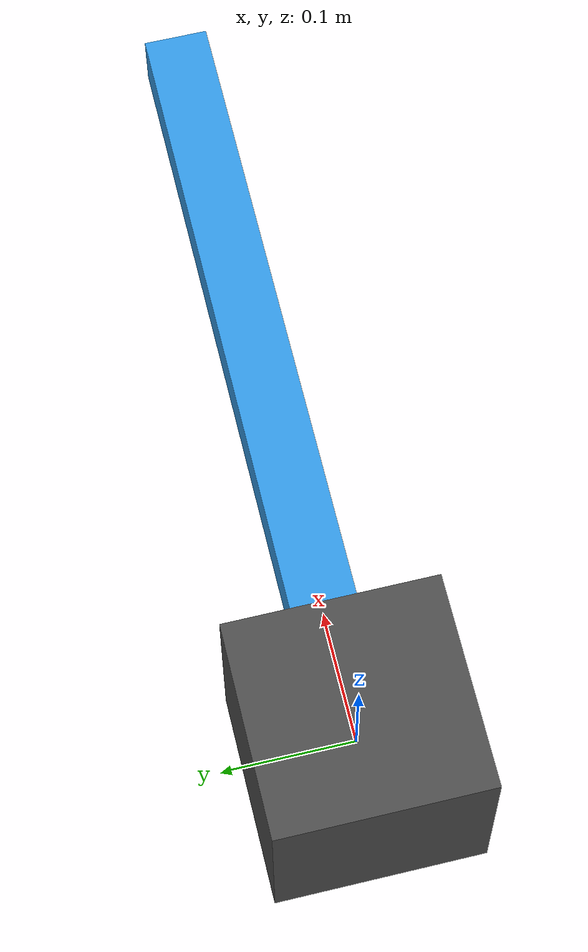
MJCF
<mujoco model="single_joint_pd">
    <option timestep="0.002" gravity="0 0 0"/>

    <worldbody>
        <!-- 固定底座 -->
        <geom name="base"
              type="box"
              pos="0 0 0"
              size="0.08 0.08 0.08"
              rgba="0.3 0.3 0.3 1"
              contype="0"
              conaffinity="0"/>

        <!-- 只有一个旋转自由度的连杆 -->
        <body name="arm" pos="0 0 0">
            <joint name="joint1"
                   type="hinge"
                   axis="0 0 1"
                   damping="0.1"/>

            <geom name="link"
                  type="box"
                  pos="0.3 0 0"
                  size="0.3 0.025 0.025"
                  mass="1"
                  rgba="0.2 0.6 0.9 1"/>
        </body>
    </worldbody>

    <actuator>
        <motor name="motor1"
               joint="joint1"
               gear="1"
               ctrllimited="true"
               ctrlrange="-20 20"/>
    </actuator>
</mujoco>
